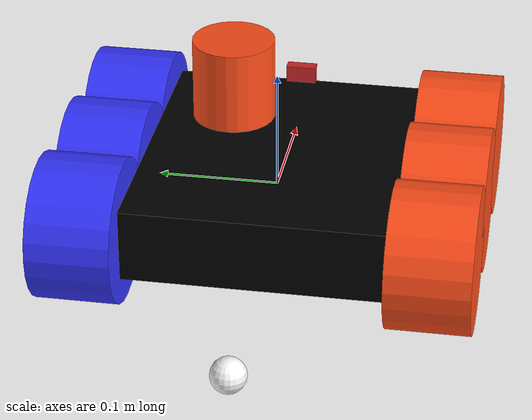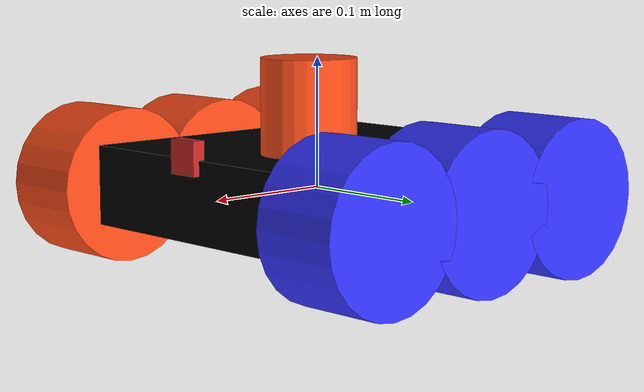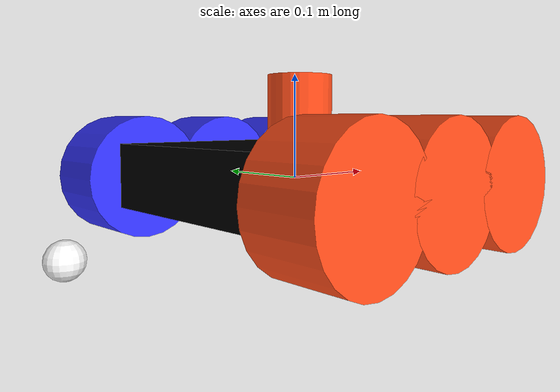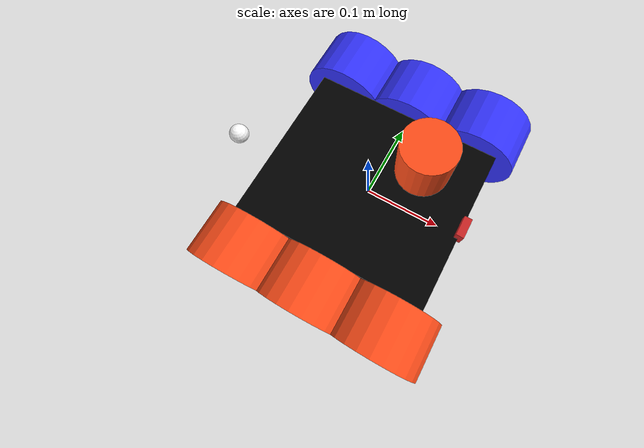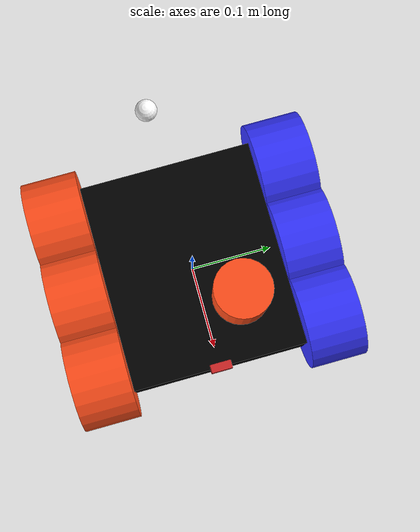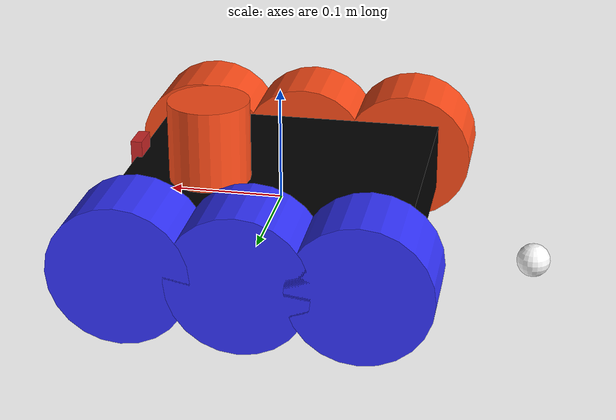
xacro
<?xml version="1.0"?>
<robot xmlns:xacro="http://www.ros.org/wiki/xacro"  name="robot">

    <xacro:arg name="use_ros2_control" default="true"/>
    <xacro:arg name="sim_mode" default="false"/>

    <xacro:include filename= "robot_core.xacro" />

    <xacro:if value="$(arg use_ros2_control)">
        <xacro:include filename="ros2_control.xacro" />
    </xacro:if>
    <xacro:unless value="$(arg use_ros2_control)">
        <xacro:include filename="gazebo_control.xacro" />
    </xacro:unless>

    <xacro:include filename= "lidar.xacro" />
    <xacro:include filename= "camera.xacro" />

</robot>

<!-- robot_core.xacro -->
<robot xmlns:xacro="http://www.ros.org/wiki/xacro">

    <xacro:include filename ="inertial_macros.xacro"/>

    <material name= "white">
        <color rgba="1 1 1 1" />
    </material>

    <material name= "orange">
        <color rgba="1 0.3 0.1 1" />
    </material>

    <material name= "blue">
        <color rgba="0.2 0.2 1 1" />
    </material>

    <material name= "black">
        <color rgba="0 0 0 1" />
    </material>

    <link name = "base_link">

    </link>

    <!-- BASE_FOOTPRINT LINK -->

    <joint name="base_footprint_joint" type="fixed">
        <parent link="base_link"/>
        <child link="base_footprint"/>
        <origin xyz="0 0 0" rpy="0 0 0"/>
    </joint>

    <link name="base_footprint">
    </link>

    <joint name = "chassis_joint" type = "fixed">
        <parent link = "base_link"/>
        <child link = "chassis"/>
        <origin xyz = "-0.1275 0 0"/>
    </joint>

    <link name = "chassis">
        <visual>
            <origin xyz="0.1275 0 0.00305"/>
                <geometry>
                    <box size = "0.255 0.214 0.061"/>
                </geometry>
            <material name = "black" />
        </visual>
        <collision>
            <origin xyz="0.1275 0 0.00305"/>
                <geometry>
                    <box size = "0.255 0.214 0.061"/>
                </geometry>
            <material name = "black" />
        </collision>
        <xacro:inertial_box mass="0.5" x= "0.255" y= "0.214" z= "0.061">
            <origin xyz ="0.1275 0 0.00315" rpy="0 0 0"/>
        </xacro:inertial_box>
    </link>

    <gazebo reference = "chassis">
        <material>Gazebo/Black</material>
    </gazebo>

    <!-- LEFT WHEEL REAR -->

    <joint name = "back_left_wheel_joint" type = "fixed">
        <parent link = "base_link"/>
        <child link = "left_wheel_rear"/>
        <origin xyz = "-0.0975 0.1425 0" rpy="-${pi/2} 0 0"/>
        <axis xyz = "0 0 1"/>
    </joint>

    <link name = "left_wheel_rear">
        <visual>
            <geometry>
                <cylinder radius = "0.06" length ="0.069"/>
            </geometry>
            <material name = "blue" />
        </visual>
    </link>

    <gazebo reference = "left_wheel_rear">
        <material>Gazebo/Blue</material>
        <mu1 value="0.001"/>
        <mu2 value="0.001"/>
    </gazebo>

    <!-- LEFT WHEEL FRONT-->

    <joint name = "front_left_wheel_joint" type = "fixed">
        <parent link = "base_link"/>
        <child link = "left_wheel_front"/>
        <origin xyz = "0.0975 0.1425 0" rpy="-${pi/2} 0 0"/>
        <axis xyz = "0 0 1"/>
    </joint>

    <link name = "left_wheel_front">
        <visual>
            <geometry>
                <cylinder radius = "0.06" length ="0.069"/>
            </geometry>
            <material name = "blue" />
        </visual>
    </link>

    <gazebo reference = "left_wheel_front">
        <material>Gazebo/Blue</material>
        <mu1 value="0.001"/>
        <mu2 value="0.001"/>
    </gazebo>

    <!-- LEFT DRIVE WHEEL -->

      <joint name = "left_drive_joint" type = "continuous">
        <parent link = "base_link"/>
        <child link = "left_wheel_drive"/>
        <origin xyz = "0 0.1425 0" rpy="-${pi/2} 0 0"/>
        <axis xyz = "0 0 1"/>
    </joint>

    <link name = "left_wheel_drive">
        <visual>
            <geometry>
                <cylinder radius = "0.06" length ="0.069"/>
            </geometry>
            <material name = "blue" />
        </visual>
        <collision>
            <geometry>
                <cylinder radius = "0.06" length ="0.069"/>
            </geometry>
            <material name = "blue" />
        </collision>
        <xacro:inertial_cylinder mass = "0.1" length = "0.069" radius = "0.06">
            <origin xyz = "0 0 0" rpy ="0 0 0"/>
        </xacro:inertial_cylinder>
    </link>

    <gazebo reference = "left_wheel_drive">
        <material>Gazebo/GreyTransparent</material>
    </gazebo>

     <!-- RIGHTWHEEL REAR -->

    <joint name = "back_right_wheel_joint" type = "fixed">
        <parent link = "base_link"/>
        <child link = "right_wheel_rear"/>
        <origin xyz = "-0.0975 -0.1425 0" rpy="${pi/2} 0 0"/>
        <axis xyz = "0 0 -1"/>
    </joint>

    <link name = "right_wheel_rear">
        <visual>
            <geometry>
                <cylinder radius = "0.06" length ="0.069"/>
            </geometry>
            <material name = "orange" />
        </visual>
    </link>

    <gazebo reference = "right_wheel_rear">
        <material>Gazebo/Orange</material>
        <mu1 value="0.001"/>
        <mu2 value="0.001"/>
    </gazebo>

     <!-- RIGHTWHEEL FRONT-->

    <joint name = "front_right_wheel_joint" type = "fixed">
        <parent link = "base_link"/>
        <child link = "right_wheel_front"/>
        <origin xyz = "0.0975 -0.1425 0" rpy="${pi/2} 0 0"/>
        <axis xyz = "0 0 -1"/>
    </joint>

    <link name = "right_wheel_front">
        <visual>
            <geometry>
                <cylinder radius = "0.06" length ="0.069"/>
            </geometry>
            <material name = "orange" />
        </visual>
    </link>

    <gazebo reference = "right_wheel_front">
        <material>Gazebo/Orange</material>
        <mu1 value="0.001"/>
        <mu2 value="0.001"/>
    </gazebo>

    <!-- RIGHT WHEEL DRIVE -->
     <joint name = "right_drive_joint" type = "continuous">
        <parent link = "base_link"/>
        <child link = "right_wheel_drive"/>
        <origin xyz = "0 -0.1425 0" rpy="${pi/2} 0 0"/>
        <axis xyz = "0 0 -1"/>
    </joint>

    <link name = "right_wheel_drive">
        <visual>
            <geometry>
                <cylinder radius = "0.06" length ="0.069"/>
            </geometry>
            <material name = "orange" />
        </visual>
        <collision>
            <geometry>
                <cylinder radius = "0.06" length ="0.069"/>
            </geometry>
            <material name = "orange" />
        </collision>
        <xacro:inertial_cylinder mass = "0.1" length = "0.069" radius = "0.06">
            <origin xyz = "0 0 0" rpy ="0 0 0"/>
        </xacro:inertial_cylinder>
    </link>

    <gazebo reference = "right_wheel_drive">
        <material>Gazebo/GreyTransparent</material>
    </gazebo>

    <!--FRONT BALANCE-->

    <joint name="front_caster_wheel_joint" type="fixed">
        <parent link="chassis"/>
        <child link="caster_wheel_front"/>
        <origin xyz="0.0975 0 -0.0425"/>
    </joint>

    <link name="caster_wheel_front">
        <visual>
            <geometry>
                <sphere radius="0.01475"/>
            </geometry>
            <material name="white"/>
        </visual>
        <collision>
            <geometry>
                <sphere radius="0.01475"/>
            </geometry>
        </collision>
        <xacro:inertial_sphere mass="0.1" radius="0.01475">
            <origin xyz="0 0 0" rpy="0 0 0"/>
        </xacro:inertial_sphere>
    </link>

    <gazebo reference = "caster_wheel_front">
        <material>Gazebo/GreyTransparent</material>
        <mu1 value="0.001"/>
        <mu2 value="0.001"/>
    </gazebo>

    <!-- BACK BALANCE -->

     <joint name="back_caster_wheel_joint" type="fixed">
        <parent link="chassis"/>
        <child link="caster_wheel_back"/>
        <origin xyz="-0.0975 0 -0.0425"/>
    </joint>

    <link name="caster_wheel_back">
        <visual>
            <geometry>
                <sphere radius="0.01475"/>
            </geometry>
            <material name="white"/>
        </visual>
        <collision>
            <geometry>
                <sphere radius="0.01475"/>
            </geometry>
        </collision>
        <xacro:inertial_sphere mass="0.1" radius="0.01475">
            <origin xyz="0 0 0" rpy="0 0 0"/>
        </xacro:inertial_sphere>
    </link>

    <gazebo reference = "caster_wheel_back">
        <material>Gazebo/GreyTransparent</material>
        <mu1 value="0.001"/>
        <mu2 value="0.001"/>
    </gazebo>

</robot>

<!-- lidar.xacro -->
<robot xmlns:xacro="http://www.ros.org/wiki/xacro">

    <joint name = "laser_joint" type = "fixed">
        <parent link = "chassis"/>
        <child link = "laser_frame"/>
        <origin xyz = "0.1795 0.046 0.07" rpy = "0 0 ${pi}"/>

    </joint>

    <link name ="laser_frame">
        <visual>
            <geometry>
                <cylinder radius = "0.035" length ="0.07"/>
            </geometry>
            <material name = "orange" />
        </visual>
        <collision>
            <geometry>
                <cylinder radius = "0.035" length ="0.055"/>
            </geometry>
            <material name = "white" />
        </collision>
        <xacro:inertial_cylinder mass = "0.1" length = "0.055" radius = "0.035">
            <origin xyz = "0 0 0" rpy ="0 0 0"/>
        </xacro:inertial_cylinder>
    </link>

    <gazebo reference = "laser_frame">
        <material>Gazebo/White</material>
        <sensor name = "laser" type = "ray">
            <pose> 0 0 0 0 0 0 </pose>
            <visualize>true</visualize>
            <update_rate>10</update_rate>
            <ray>
                <scan>
                    <horizontal>
                        <samples>360</samples>
                        <min_angle>-3.14</min_angle>
                        <max_angle>3.14</max_angle>
                    </horizontal>
                </scan>
                <range>
                    <min>0.3</min>
                    <max>12</max>
                </range>
            </ray>
            <plugin name = "laser_controller" filename = "libgazebo_ros_ray_sensor.so">
                <ros>
                    <argument>~/out:=scan</argument>
                </ros>
                <output_type>sensor_msgs/LaserScan</output_type>
                <frame_name>laser_frame</frame_name>
            </plugin>
        </sensor>
    </gazebo>
</robot>

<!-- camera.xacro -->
<robot xmlns:xacro="http://www.ros.org/wiki/xacro">

    <joint name = "camera_joint" type = "fixed">
        <parent link = "chassis"/>
        <child link = "camera_link"/>
        <origin xyz = "0.255 0 0.035" rpy = "0 0 0"/>

    </joint>

    <link name ="camera_link">
        <visual>
            <geometry>
                <box size = "0.010 0.0255 0.0255"/>
            </geometry>
            <material name = "red" />
        </visual>
    </link>

    <joint name = "camera_optical_joint" type = "fixed">
        <parent link = "camera_link"/>
        <child link = "camera_link_optical"/>
        <origin xyz = "0 0 0" rpy = "${-pi/2} 0 ${-pi/2}"/>
    </joint>

    <link name ="camera_link_optical"></link>

    <gazebo reference = "camera_link">
        <material>Gazebo/White</material>

        <sensor name = "camera" type = "camera">
            <pose> 0 0 0 0 0 0 </pose>
            <visualize>true</visualize>
            <update_rate>10</update_rate>
            <camera>
                <horizontal_fov>1.089</horizontal_fov>
                <image>
                    <format>R8G8B8</format>
                    <width>640</width>
                    <height>480</height>
                </image>
                <clip>
                    <near>0.05</near>
                    <far>8.0</far>
                </clip>
            </camera>

            <plugin name = "camera_controller" filename = "libgazebo_ros_camera.so">
                <imageTopicName>image_raw</imageTopicName>
                <frame_name>camera_link_optical</frame_name>
            </plugin>
        </sensor>

    </gazebo>

</robot>
